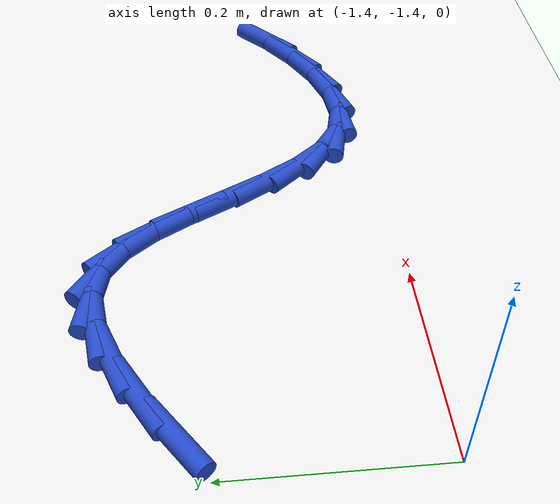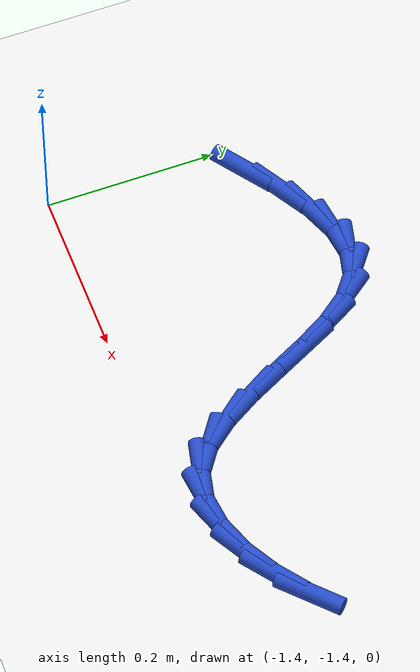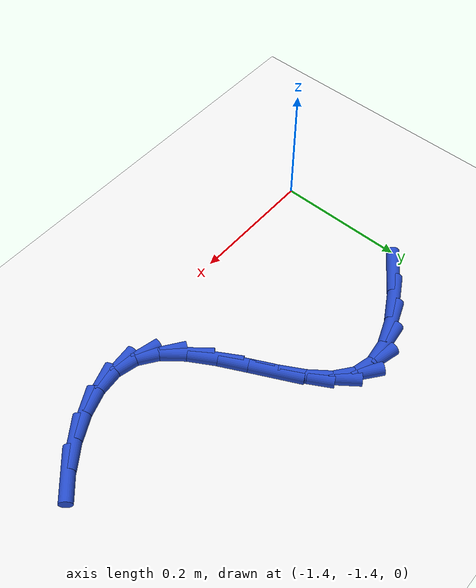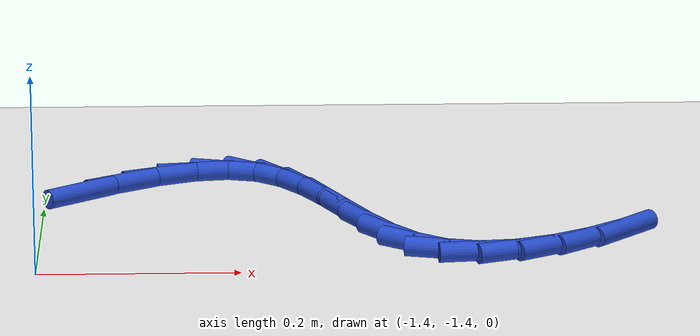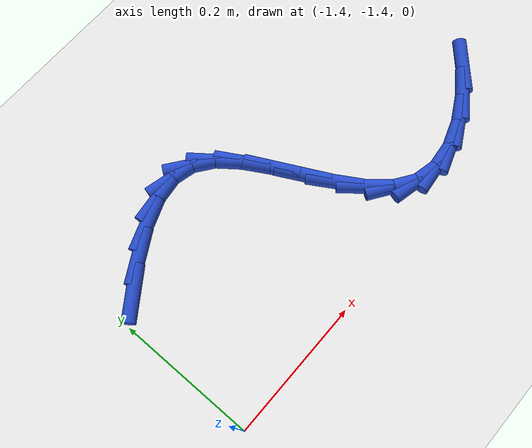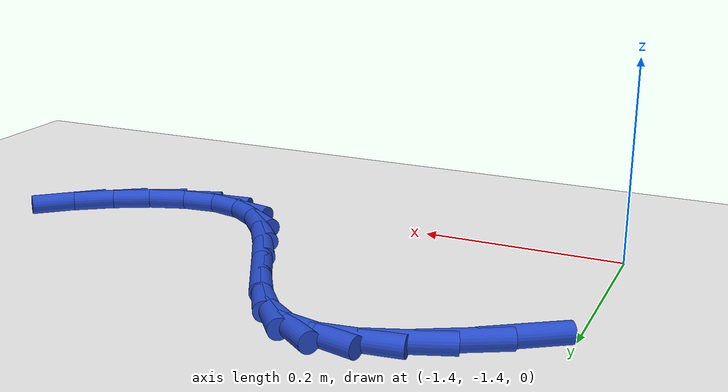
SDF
<sdf version="1.6">
 <world name="default">
  <model name="ground_plane">
   <static>1</static>
   <link name="link">
    <collision name="collision">
     <geometry><plane><normal>0 0 1</normal><size>100 100</size></plane></geometry>
     <surface><friction><ode><mu>100</mu><mu2>50</mu2></ode></friction></surface>
    </collision>
    <visual name="visual">
     <cast_shadows>0</cast_shadows>
     <geometry><plane><normal>0 0 1</normal><size>100 100</size></plane></geometry>
     <material>
      <script><uri>file://media/materials/scripts/gazebo.material</uri><name>Gazebo/WhiteGlow</name></script>
     </material>
    </visual>
   </link>
  </model>
  <model name="line">
   <link name="link_171">
    <pose>-1.363700968845384 -1.174268074293197 0.01 0 1.57 0.6174259017320082</pose>
    <collision name="collision">
     <geometry><cylinder><radius>0.01</radius><length>0.08</length></cylinder></geometry>
    </collision>
    <visual name="visual">
     <material>
      <script><name>Gazebo/Blue</name><uri>file://media/materials/scripts/gazebo.material</uri></script>
     </material>
     <geometry><cylinder><radius>0.01</radius><length>0.08</length></cylinder></geometry>
    </visual>
   </link>
   <link name="link_172">
    <pose>-1.3229133131658115 -1.1453076111567146 0.01 0 1.57 0.5194172838889369</pose>
    <collision name="collision">
     <geometry><cylinder><radius>0.01</radius><length>0.08</length></cylinder></geometry>
    </collision>
    <visual name="visual">
     <material>
      <script><name>Gazebo/Blue</name><uri>file://media/materials/scripts/gazebo.material</uri></script>
     </material>
     <geometry><cylinder><radius>0.01</radius><length>0.08</length></cylinder></geometry>
    </visual>
   </link>
   <link name="link_173">
    <pose>-1.2836241435550766 -1.1228425220057645 0.01 0 1.57 0.36715099421301683</pose>
    <collision name="collision">
     <geometry><cylinder><radius>0.01</radius><length>0.08</length></cylinder></geometry>
    </collision>
    <visual name="visual">
     <material>
      <script><name>Gazebo/Blue</name><uri>file://media/materials/scripts/gazebo.material</uri></script>
     </material>
     <geometry><cylinder><radius>0.01</radius><length>0.08</length></cylinder></geometry>
    </visual>
   </link>
   <link name="link_174">
    <pose>-1.246606285466083 -1.1086058548139768 0.01 0 1.57 0.12518036876584732</pose>
    <collision name="collision">
     <geometry><cylinder><radius>0.01</radius><length>0.08</length></cylinder></geometry>
    </collision>
    <visual name="visual">
     <material>
      <script><name>Gazebo/Blue</name><uri>file://media/materials/scripts/gazebo.material</uri></script>
     </material>
     <geometry><cylinder><radius>0.01</radius><length>0.08</length></cylinder></geometry>
    </visual>
   </link>
   <link name="link_175">
    <pose>-1.2126325643517328 -1.1043306575549812 0.01 0 1.57 -0.24122608988778668</pose>
    <collision name="collision">
     <geometry><cylinder><radius>0.01</radius><length>0.08</length></cylinder></geometry>
    </collision>
    <visual name="visual">
     <material>
      <script><name>Gazebo/Blue</name><uri>file://media/materials/scripts/gazebo.material</uri></script>
     </material>
     <geometry><cylinder><radius>0.01</radius><length>0.08</length></cylinder></geometry>
    </visual>
   </link>
   <link name="link_176">
    <pose>-1.1824757137023958 -1.1117497436966988 0.01 0 1.57 -0.6524207322529058</pose>
    <collision name="collision">
     <geometry><cylinder><radius>0.01</radius><length>0.08</length></cylinder></geometry>
    </collision>
    <visual name="visual">
     <material>
      <script><name>Gazebo/Blue</name><uri>file://media/materials/scripts/gazebo.material</uri></script>
     </material>
     <geometry><cylinder><radius>0.01</radius><length>0.08</length></cylinder></geometry>
    </visual>
   </link>
   <link name="link_177">
    <pose>-1.1565125730791017 -1.1315863918375004 0.01 0 1.57 -0.9176047604050461</pose>
    <collision name="collision">
     <geometry><cylinder><radius>0.01</radius><length>0.08</length></cylinder></geometry>
    </collision>
    <visual name="visual">
     <material>
      <script><name>Gazebo/Blue</name><uri>file://media/materials/scripts/gazebo.material</uri></script>
     </material>
     <geometry><cylinder><radius>0.01</radius><length>0.08</length></cylinder></geometry>
    </visual>
   </link>
   <link name="link_178">
    <pose>-1.133817713878951 -1.1612430791600956 0.01 0 1.57 -1.0530016911417903</pose>
    <collision name="collision">
     <geometry><cylinder><radius>0.01</radius><length>0.08</length></cylinder></geometry>
    </collision>
    <visual name="visual">
     <material>
      <script><name>Gazebo/Blue</name><uri>file://media/materials/scripts/gazebo.material</uri></script>
     </material>
     <geometry><cylinder><radius>0.01</radius><length>0.08</length></cylinder></geometry>
    </visual>
   </link>
   <link name="link_179">
    <pose>-1.113198332572957 -1.197440473172622 0.01 0 1.57 -1.1070002632477534</pose>
    <collision name="collision">
     <geometry><cylinder><radius>0.01</radius><length>0.08</length></cylinder></geometry>
    </collision>
    <visual name="visual">
     <material>
      <script><name>Gazebo/Blue</name><uri>file://media/materials/scripts/gazebo.material</uri></script>
     </material>
     <geometry><cylinder><radius>0.01</radius><length>0.08</length></cylinder></geometry>
    </visual>
   </link>
   <link name="link_180">
    <pose>-1.0934616256321363 -1.2368992413832134 0.01 0 1.57 -1.100549475858376</pose>
    <collision name="collision">
     <geometry><cylinder><radius>0.01</radius><length>0.08</length></cylinder></geometry>
    </collision>
    <visual name="visual">
     <material>
      <script><name>Gazebo/Blue</name><uri>file://media/materials/scripts/gazebo.material</uri></script>
     </material>
     <geometry><cylinder><radius>0.01</radius><length>0.08</length></cylinder></geometry>
    </visual>
   </link>
   <link name="link_181">
    <pose>-1.0734147895275024 -1.2763400513000078 0.01 0 1.57 -1.0331551623408444</pose>
    <collision name="collision">
     <geometry><cylinder><radius>0.01</radius><length>0.08</length></cylinder></geometry>
    </collision>
    <visual name="visual">
     <material>
      <script><name>Gazebo/Blue</name><uri>file://media/materials/scripts/gazebo.material</uri></script>
     </material>
     <geometry><cylinder><radius>0.01</radius><length>0.08</length></cylinder></geometry>
    </visual>
   </link>
   <link name="link_182">
    <pose>-1.05186502073007 -1.3124835704311402 0.01 0 1.57 -0.8839655234911832</pose>
    <collision name="collision">
     <geometry><cylinder><radius>0.01</radius><length>0.08</length></cylinder></geometry>
    </collision>
    <visual name="visual">
     <material>
      <script><name>Gazebo/Blue</name><uri>file://media/materials/scripts/gazebo.material</uri></script>
     </material>
     <geometry><cylinder><radius>0.01</radius><length>0.08</length></cylinder></geometry>
    </visual>
   </link>
   <link name="link_183">
    <pose>-1.0276195157108532 -1.342050466284748 0.01 0 1.57 -0.6111365157110299</pose>
    <collision name="collision">
     <geometry><cylinder><radius>0.01</radius><length>0.08</length></cylinder></geometry>
    </collision>
    <visual name="visual">
     <material>
      <script><name>Gazebo/Blue</name><uri>file://media/materials/scripts/gazebo.material</uri></script>
     </material>
     <geometry><cylinder><radius>0.01</radius><length>0.08</length></cylinder></geometry>
    </visual>
   </link>
   <link name="link_184">
    <pose>-0.9994855138698243 -1.3617614826947684 0.01 0 1.57 -0.2263094663983463</pose>
    <collision name="collision">
     <geometry><cylinder><radius>0.01</radius><length>0.08</length></cylinder></geometry>
    </collision>
    <visual name="visual">
     <material>
      <script><name>Gazebo/Blue</name><uri>file://media/materials/scripts/gazebo.material</uri></script>
     </material>
     <geometry><cylinder><radius>0.01</radius><length>0.08</length></cylinder></geometry>
    </visual>
   </link>
   <link name="link_185">
    <pose>-0.9668040934051608 -1.3692865054342123 0.01 0 1.57 0.10164214794523338</pose>
    <collision name="collision">
     <geometry><cylinder><radius>0.01</radius><length>0.08</length></cylinder></geometry>
    </collision>
    <visual name="visual">
     <material>
      <script><name>Gazebo/Blue</name><uri>file://media/materials/scripts/gazebo.material</uri></script>
     </material>
     <geometry><cylinder><radius>0.01</radius><length>0.08</length></cylinder></geometry>
    </visual>
   </link>
   <link name="link_186">
    <pose>-0.9307819918640603 -1.3656124806661152 0.01 0 1.57 0.33549137013494856</pose>
    <collision name="collision">
     <geometry><cylinder><radius>0.01</radius><length>0.08</length></cylinder></geometry>
    </collision>
    <visual name="visual">
     <material>
      <script><name>Gazebo/Blue</name><uri>file://media/materials/scripts/gazebo.material</uri></script>
     </material>
     <geometry><cylinder><radius>0.01</radius><length>0.08</length></cylinder></geometry>
    </visual>
   </link>
   <link name="link_187">
    <pose>-0.8930332673224529 -1.352450552565655 0.01 0 1.57 0.5051717550290594</pose>
    <collision name="collision">
     <geometry><cylinder><radius>0.01</radius><length>0.08</length></cylinder></geometry>
    </collision>
    <visual name="visual">
     <material>
      <script><name>Gazebo/Blue</name><uri>file://media/materials/scripts/gazebo.material</uri></script>
     </material>
     <geometry><cylinder><radius>0.01</radius><length>0.08</length></cylinder></geometry>
    </visual>
   </link>
   <link name="link_188">
    <pose>-0.8551719778562668 -1.3315118653080087 0.01 0 1.57 0.6388106147156265</pose>
    <collision name="collision">
     <geometry><cylinder><radius>0.01</radius><length>0.08</length></cylinder></geometry>
    </collision>
    <visual name="visual">
     <material>
      <script><name>Gazebo/Blue</name><uri>file://media/materials/scripts/gazebo.material</uri></script>
     </material>
     <geometry><cylinder><radius>0.01</radius><length>0.08</length></cylinder></geometry>
    </visual>
   </link>
   <link name="link_189">
    <pose>-0.818812181541433 -1.3045075630683556 0.01 0 1.57 0.7562209357019484</pose>
    <collision name="collision">
     <geometry><cylinder><radius>0.01</radius><length>0.08</length></cylinder></geometry>
    </collision>
    <visual name="visual">
     <material>
      <script><name>Gazebo/Blue</name><uri>file://media/materials/scripts/gazebo.material</uri></script>
     </material>
     <geometry><cylinder><radius>0.01</radius><length>0.08</length></cylinder></geometry>
    </visual>
   </link>
  </model>
 </world>
</sdf>
